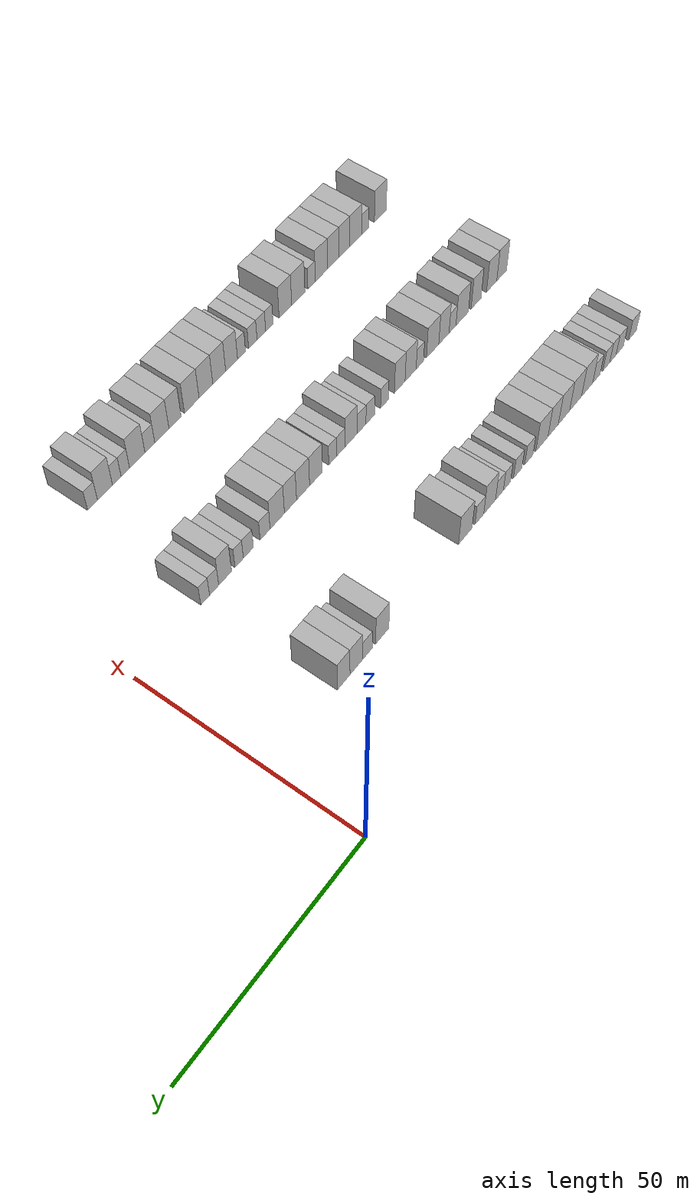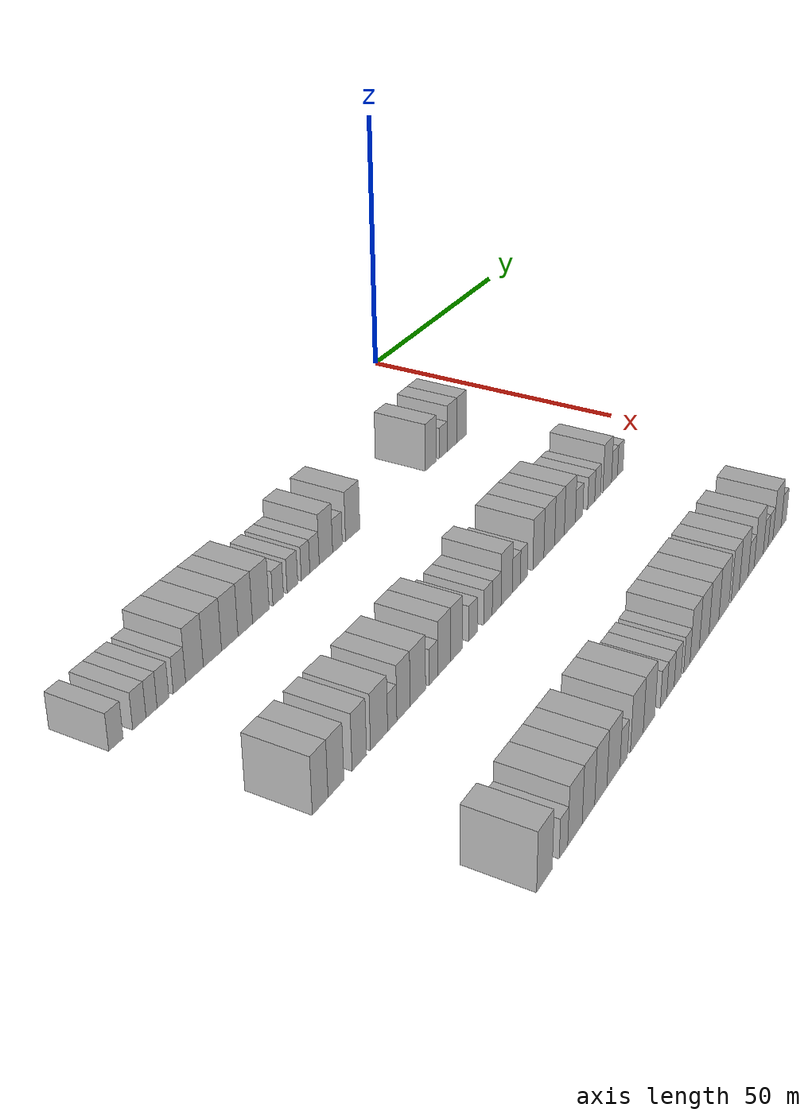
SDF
<sdf version="1.6">
 <world name="default">
  <model name="building_87">
   <static>1</static>
   <pose>25.0000 -118.3944 0 0.000000 0.000000 0.000000</pose>
   <link name="link">
    <pose>0 0 3.00 0 0 0</pose>
    <collision name="collision"><geometry><box><size>10.0000 2.9762 6.0000</size></box></geometry></collision>
    <visual name="visual">
     <cast_shadows>0</cast_shadows>
     <geometry><box><size>10.0000 2.9762 6.0000</size></box></geometry>
     <material>
      <script>
       <uri>model://HANNAS_wall/materials/scripts</uri>
       <uri>model://HANNAS_wall/materials/textures</uri>
       <name>vrc/HANNAS_wall</name>
      </script>
     </material>
    </visual>
   </link>
  </model>
  <model name="building_88">
   <static>1</static>
   <pose>25.0000 -113.4831 0 0.000000 0.000000 0.000000</pose>
   <link name="link">
    <pose>0 0 3.00 0 0 0</pose>
    <collision name="collision"><geometry><box><size>10.0000 2.8463 6.0000</size></box></geometry></collision>
    <visual name="visual">
     <cast_shadows>0</cast_shadows>
     <geometry><box><size>10.0000 2.8463 6.0000</size></box></geometry>
     <material>
      <script>
       <uri>model://HANNAS_wall/materials/scripts</uri>
       <uri>model://HANNAS_wall/materials/textures</uri>
       <name>vrc/HANNAS_wall</name>
      </script>
     </material>
    </visual>
   </link>
  </model>
  <model name="building_89">
   <static>1</static>
   <pose>25.0000 -110.8504 0 0.000000 0.000000 0.000000</pose>
   <link name="link">
    <pose>0 0 3.00 0 0 0</pose>
    <collision name="collision"><geometry><box><size>10.0000 2.4191 6.0000</size></box></geometry></collision>
    <visual name="visual">
     <cast_shadows>0</cast_shadows>
     <geometry><box><size>10.0000 2.4191 6.0000</size></box></geometry>
     <material>
      <script>
       <uri>model://HANNAS_wall/materials/scripts</uri>
       <uri>model://HANNAS_wall/materials/textures</uri>
       <name>vrc/HANNAS_wall</name>
      </script>
     </material>
    </visual>
   </link>
  </model>
  <model name="building_90">
   <static>1</static>
   <pose>25.0000 -108.3394 0 0.000000 0.000000 0.000000</pose>
   <link name="link">
    <pose>0 0 3.00 0 0 0</pose>
    <collision name="collision"><geometry><box><size>10.0000 2.6029 6.0000</size></box></geometry></collision>
    <visual name="visual">
     <cast_shadows>0</cast_shadows>
     <geometry><box><size>10.0000 2.6029 6.0000</size></box></geometry>
     <material>
      <script>
       <uri>model://HANNAS_wall/materials/scripts</uri>
       <uri>model://HANNAS_wall/materials/textures</uri>
       <name>vrc/HANNAS_wall</name>
      </script>
     </material>
    </visual>
   </link>
  </model>
  <model name="building_91">
   <static>1</static>
   <pose>25.0000 -104.6373 0 0.000000 0.000000 0.000000</pose>
   <link name="link">
    <pose>0 0 3.00 0 0 0</pose>
    <collision name="collision"><geometry><box><size>10.0000 2.8015 6.0000</size></box></geometry></collision>
    <visual name="visual">
     <cast_shadows>0</cast_shadows>
     <geometry><box><size>10.0000 2.8015 6.0000</size></box></geometry>
     <material>
      <script>
       <uri>model://HANNAS_wall/materials/scripts</uri>
       <uri>model://HANNAS_wall/materials/textures</uri>
       <name>vrc/HANNAS_wall</name>
      </script>
     </material>
    </visual>
   </link>
  </model>
  <model name="building_92">
   <static>1</static>
   <pose>25.0000 -101.1610 0 0.000000 0.000000 0.000000</pose>
   <link name="link">
    <pose>0 0 4.50 0 0 0</pose>
    <collision name="collision"><geometry><box><size>10.0000 4.1509 9.0000</size></box></geometry></collision>
    <visual name="visual">
     <cast_shadows>0</cast_shadows>
     <geometry><box><size>10.0000 4.1509 9.0000</size></box></geometry>
     <material>
      <script>
       <uri>model://HANNAS_wall/materials/scripts</uri>
       <uri>model://HANNAS_wall/materials/textures</uri>
       <name>vrc/HANNAS_wall</name>
      </script>
     </material>
    </visual>
   </link>
  </model>
  <model name="building_93">
   <static>1</static>
   <pose>25.0000 -96.8949 0 0.000000 0.000000 0.000000</pose>
   <link name="link">
    <pose>0 0 4.50 0 0 0</pose>
    <collision name="collision"><geometry><box><size>10.0000 4.3813 9.0000</size></box></geometry></collision>
    <visual name="visual">
     <cast_shadows>0</cast_shadows>
     <geometry><box><size>10.0000 4.3813 9.0000</size></box></geometry>
     <material>
      <script>
       <uri>model://HANNAS_wall/materials/scripts</uri>
       <uri>model://HANNAS_wall/materials/textures</uri>
       <name>vrc/HANNAS_wall</name>
      </script>
     </material>
    </visual>
   </link>
  </model>
  <model name="building_94">
   <static>1</static>
   <pose>25.0000 -92.6650 0 0.000000 0.000000 0.000000</pose>
   <link name="link">
    <pose>0 0 4.50 0 0 0</pose>
    <collision name="collision"><geometry><box><size>10.0000 4.0784 9.0000</size></box></geometry></collision>
    <visual name="visual">
     <cast_shadows>0</cast_shadows>
     <geometry><box><size>10.0000 4.0784 9.0000</size></box></geometry>
     <material>
      <script>
       <uri>model://HANNAS_wall/materials/scripts</uri>
       <uri>model://HANNAS_wall/materials/textures</uri>
       <name>vrc/HANNAS_wall</name>
      </script>
     </material>
    </visual>
   </link>
  </model>
  <model name="building_95">
   <static>1</static>
   <pose>25.0000 -88.7734 0 0.000000 0.000000 0.000000</pose>
   <link name="link">
    <pose>0 0 4.50 0 0 0</pose>
    <collision name="collision"><geometry><box><size>10.0000 3.7049 9.0000</size></box></geometry></collision>
    <visual name="visual">
     <cast_shadows>0</cast_shadows>
     <geometry><box><size>10.0000 3.7049 9.0000</size></box></geometry>
     <material>
      <script>
       <uri>model://HANNAS_wall/materials/scripts</uri>
       <uri>model://HANNAS_wall/materials/textures</uri>
       <name>vrc/HANNAS_wall</name>
      </script>
     </material>
    </visual>
   </link>
  </model>
  <model name="building_96">
   <static>1</static>
   <pose>25.0000 -84.7513 0 0.000000 0.000000 0.000000</pose>
   <link name="link">
    <pose>0 0 4.50 0 0 0</pose>
    <collision name="collision"><geometry><box><size>10.0000 4.3392 9.0000</size></box></geometry></collision>
    <visual name="visual">
     <cast_shadows>0</cast_shadows>
     <geometry><box><size>10.0000 4.3392 9.0000</size></box></geometry>
     <material>
      <script>
       <uri>model://HANNAS_wall/materials/scripts</uri>
       <uri>model://HANNAS_wall/materials/textures</uri>
       <name>vrc/HANNAS_wall</name>
      </script>
     </material>
    </visual>
   </link>
  </model>
  <model name="building_97">
   <static>1</static>
   <pose>25.0000 -80.1535 0 0.000000 0.000000 0.000000</pose>
   <link name="link">
    <pose>0 0 3.00 0 0 0</pose>
    <collision name="collision"><geometry><box><size>10.0000 2.8565 6.0000</size></box></geometry></collision>
    <visual name="visual">
     <cast_shadows>0</cast_shadows>
     <geometry><box><size>10.0000 2.8565 6.0000</size></box></geometry>
     <material>
      <script>
       <uri>model://HANNAS_wall/materials/scripts</uri>
       <uri>model://HANNAS_wall/materials/textures</uri>
       <name>vrc/HANNAS_wall</name>
      </script>
     </material>
    </visual>
   </link>
  </model>
  <model name="building_98">
   <static>1</static>
   <pose>25.0000 -76.2594 0 0.000000 0.000000 0.000000</pose>
   <link name="link">
    <pose>0 0 3.00 0 0 0</pose>
    <collision name="collision"><geometry><box><size>10.0000 2.9316 6.0000</size></box></geometry></collision>
    <visual name="visual">
     <cast_shadows>0</cast_shadows>
     <geometry><box><size>10.0000 2.9316 6.0000</size></box></geometry>
     <material>
      <script>
       <uri>model://HANNAS_wall/materials/scripts</uri>
       <uri>model://HANNAS_wall/materials/textures</uri>
       <name>vrc/HANNAS_wall</name>
      </script>
     </material>
    </visual>
   </link>
  </model>
  <model name="building_99">
   <static>1</static>
   <pose>25.0000 -72.5748 0 0.000000 0.000000 0.000000</pose>
   <link name="link">
    <pose>0 0 3.00 0 0 0</pose>
    <collision name="collision"><geometry><box><size>10.0000 2.4377 6.0000</size></box></geometry></collision>
    <visual name="visual">
     <cast_shadows>0</cast_shadows>
     <geometry><box><size>10.0000 2.4377 6.0000</size></box></geometry>
     <material>
      <script>
       <uri>model://HANNAS_wall/materials/scripts</uri>
       <uri>model://HANNAS_wall/materials/textures</uri>
       <name>vrc/HANNAS_wall</name>
      </script>
     </material>
    </visual>
   </link>
  </model>
  <model name="building_100">
   <static>1</static>
   <pose>25.0000 -70.0135 0 0.000000 0.000000 0.000000</pose>
   <link name="link">
    <pose>0 0 3.00 0 0 0</pose>
    <collision name="collision"><geometry><box><size>10.0000 2.6848 6.0000</size></box></geometry></collision>
    <visual name="visual">
     <cast_shadows>0</cast_shadows>
     <geometry><box><size>10.0000 2.6848 6.0000</size></box></geometry>
     <material>
      <script>
       <uri>model://HANNAS_wall/materials/scripts</uri>
       <uri>model://HANNAS_wall/materials/textures</uri>
       <name>vrc/HANNAS_wall</name>
      </script>
     </material>
    </visual>
   </link>
  </model>
  <model name="building_101">
   <static>1</static>
   <pose>25.0000 -66.6913 0 0.000000 0.000000 0.000000</pose>
   <link name="link">
    <pose>0 0 4.50 0 0 0</pose>
    <collision name="collision"><geometry><box><size>10.0000 3.9597 9.0000</size></box></geometry></collision>
    <visual name="visual">
     <cast_shadows>0</cast_shadows>
     <geometry><box><size>10.0000 3.9597 9.0000</size></box></geometry>
     <material>
      <script>
       <uri>model://HANNAS_wall/materials/scripts</uri>
       <uri>model://HANNAS_wall/materials/textures</uri>
       <name>vrc/HANNAS_wall</name>
      </script>
     </material>
    </visual>
   </link>
  </model>
  <model name="building_102">
   <static>1</static>
   <pose>25.0000 -63.2658 0 0.000000 0.000000 0.000000</pose>
   <link name="link">
    <pose>0 0 3.00 0 0 0</pose>
    <collision name="collision"><geometry><box><size>10.0000 2.8912 6.0000</size></box></geometry></collision>
    <visual name="visual">
     <cast_shadows>0</cast_shadows>
     <geometry><box><size>10.0000 2.8912 6.0000</size></box></geometry>
     <material>
      <script>
       <uri>model://HANNAS_wall/materials/scripts</uri>
       <uri>model://HANNAS_wall/materials/textures</uri>
       <name>vrc/HANNAS_wall</name>
      </script>
     </material>
    </visual>
   </link>
  </model>
  <model name="building_103">
   <static>1</static>
   <pose>25.0000 -58.6016 0 0.000000 0.000000 0.000000</pose>
   <link name="link">
    <pose>0 0 4.50 0 0 0</pose>
    <collision name="collision"><geometry><box><size>10.0000 4.4373 9.0000</size></box></geometry></collision>
    <visual name="visual">
     <cast_shadows>0</cast_shadows>
     <geometry><box><size>10.0000 4.4373 9.0000</size></box></geometry>
     <material>
      <script>
       <uri>model://HANNAS_wall/materials/scripts</uri>
       <uri>model://HANNAS_wall/materials/textures</uri>
       <name>vrc/HANNAS_wall</name>
      </script>
     </material>
    </visual>
   </link>
  </model>
  <model name="building_104">
   <static>1</static>
   <pose>25.0000 -32.3615 0 0.000000 0.000000 0.000000</pose>
   <link name="link">
    <pose>0 0 4.50 0 0 0</pose>
    <collision name="collision"><geometry><box><size>10.0000 4.0143 9.0000</size></box></geometry></collision>
    <visual name="visual">
     <cast_shadows>0</cast_shadows>
     <geometry><box><size>10.0000 4.0143 9.0000</size></box></geometry>
     <material>
      <script>
       <uri>model://HANNAS_wall/materials/scripts</uri>
       <uri>model://HANNAS_wall/materials/textures</uri>
       <name>vrc/HANNAS_wall</name>
      </script>
     </material>
    </visual>
   </link>
  </model>
  <model name="building_105">
   <static>1</static>
   <pose>25.0000 -27.8669 0 0.000000 0.000000 0.000000</pose>
   <link name="link">
    <pose>0 0 3.00 0 0 0</pose>
    <collision name="collision"><geometry><box><size>10.0000 2.9749 6.0000</size></box></geometry></collision>
    <visual name="visual">
     <cast_shadows>0</cast_shadows>
     <geometry><box><size>10.0000 2.9749 6.0000</size></box></geometry>
     <material>
      <script>
       <uri>model://HANNAS_wall/materials/scripts</uri>
       <uri>model://HANNAS_wall/materials/textures</uri>
       <name>vrc/HANNAS_wall</name>
      </script>
     </material>
    </visual>
   </link>
  </model>
  <model name="building_106">
   <static>1</static>
   <pose>25.0000 -24.5528 0 0.000000 0.000000 0.000000</pose>
   <link name="link">
    <pose>0 0 4.50 0 0 0</pose>
    <collision name="collision"><geometry><box><size>10.0000 3.6533 9.0000</size></box></geometry></collision>
    <visual name="visual">
     <cast_shadows>0</cast_shadows>
     <geometry><box><size>10.0000 3.6533 9.0000</size></box></geometry>
     <material>
      <script>
       <uri>model://HANNAS_wall/materials/scripts</uri>
       <uri>model://HANNAS_wall/materials/textures</uri>
       <name>vrc/HANNAS_wall</name>
      </script>
     </material>
    </visual>
   </link>
  </model>
  <model name="building_107">
   <static>1</static>
   <pose>25.0000 -20.8812 0 0.000000 0.000000 0.000000</pose>
   <link name="link">
    <pose>0 0 4.50 0 0 0</pose>
    <collision name="collision"><geometry><box><size>10.0000 3.6899 9.0000</size></box></geometry></collision>
    <visual name="visual">
     <cast_shadows>0</cast_shadows>
     <geometry><box><size>10.0000 3.6899 9.0000</size></box></geometry>
     <material>
      <script>
       <uri>model://HANNAS_wall/materials/scripts</uri>
       <uri>model://HANNAS_wall/materials/textures</uri>
       <name>vrc/HANNAS_wall</name>
      </script>
     </material>
    </visual>
   </link>
  </model>
  <model name="building_311">
   <static>1</static>
   <pose>55.0000 -116.2164 0 0.000000 0.000000 0.000000</pose>
   <link name="link">
    <pose>0 0 4.50 0 0 0</pose>
    <collision name="collision"><geometry><box><size>10.0000 3.6587 9.0000</size></box></geometry></collision>
    <visual name="visual">
     <cast_shadows>0</cast_shadows>
     <geometry><box><size>10.0000 3.6587 9.0000</size></box></geometry>
     <material>
      <script>
       <uri>model://HANNAS_wall/materials/scripts</uri>
       <uri>model://HANNAS_wall/materials/textures</uri>
       <name>vrc/HANNAS_wall</name>
      </script>
     </material>
    </visual>
   </link>
  </model>
  <model name="building_312">
   <static>1</static>
   <pose>55.0000 -112.4895 0 0.000000 0.000000 0.000000</pose>
   <link name="link">
    <pose>0 0 4.50 0 0 0</pose>
    <collision name="collision"><geometry><box><size>10.0000 3.7952 9.0000</size></box></geometry></collision>
    <visual name="visual">
     <cast_shadows>0</cast_shadows>
     <geometry><box><size>10.0000 3.7952 9.0000</size></box></geometry>
     <material>
      <script>
       <uri>model://HANNAS_wall/materials/scripts</uri>
       <uri>model://HANNAS_wall/materials/textures</uri>
       <name>vrc/HANNAS_wall</name>
      </script>
     </material>
    </visual>
   </link>
  </model>
  <model name="building_313">
   <static>1</static>
   <pose>55.0000 -106.7815 0 0.000000 0.000000 0.000000</pose>
   <link name="link">
    <pose>0 0 4.50 0 0 0</pose>
    <collision name="collision"><geometry><box><size>10.0000 3.6206 9.0000</size></box></geometry></collision>
    <visual name="visual">
     <cast_shadows>0</cast_shadows>
     <geometry><box><size>10.0000 3.6206 9.0000</size></box></geometry>
     <material>
      <script>
       <uri>model://HANNAS_wall/materials/scripts</uri>
       <uri>model://HANNAS_wall/materials/textures</uri>
       <name>vrc/HANNAS_wall</name>
      </script>
     </material>
    </visual>
   </link>
  </model>
  <model name="building_314">
   <static>1</static>
   <pose>55.0000 -101.7455 0 0.000000 0.000000 0.000000</pose>
   <link name="link">
    <pose>0 0 4.50 0 0 0</pose>
    <collision name="collision"><geometry><box><size>10.0000 4.4515 9.0000</size></box></geometry></collision>
    <visual name="visual">
     <cast_shadows>0</cast_shadows>
     <geometry><box><size>10.0000 4.4515 9.0000</size></box></geometry>
     <material>
      <script>
       <uri>model://HANNAS_wall/materials/scripts</uri>
       <uri>model://HANNAS_wall/materials/textures</uri>
       <name>vrc/HANNAS_wall</name>
      </script>
     </material>
    </visual>
   </link>
  </model>
  <model name="building_315">
   <static>1</static>
   <pose>55.0000 -98.2851 0 0.000000 0.000000 0.000000</pose>
   <link name="link">
    <pose>0 0 3.00 0 0 0</pose>
    <collision name="collision"><geometry><box><size>10.0000 2.4693 6.0000</size></box></geometry></collision>
    <visual name="visual">
     <cast_shadows>0</cast_shadows>
     <geometry><box><size>10.0000 2.4693 6.0000</size></box></geometry>
     <material>
      <script>
       <uri>model://HANNAS_wall/materials/scripts</uri>
       <uri>model://HANNAS_wall/materials/textures</uri>
       <name>vrc/HANNAS_wall</name>
      </script>
     </material>
    </visual>
   </link>
  </model>
  <model name="building_316">
   <static>1</static>
   <pose>55.0000 -95.2318 0 0.000000 0.000000 0.000000</pose>
   <link name="link">
    <pose>0 0 4.50 0 0 0</pose>
    <collision name="collision"><geometry><box><size>10.0000 3.6374 9.0000</size></box></geometry></collision>
    <visual name="visual">
     <cast_shadows>0</cast_shadows>
     <geometry><box><size>10.0000 3.6374 9.0000</size></box></geometry>
     <material>
      <script>
       <uri>model://HANNAS_wall/materials/scripts</uri>
       <uri>model://HANNAS_wall/materials/textures</uri>
       <name>vrc/HANNAS_wall</name>
      </script>
     </material>
    </visual>
   </link>
  </model>
  <model name="building_317">
   <static>1</static>
   <pose>55.0000 -91.2551 0 0.000000 0.000000 0.000000</pose>
   <link name="link">
    <pose>0 0 4.50 0 0 0</pose>
    <collision name="collision"><geometry><box><size>10.0000 4.3159 9.0000</size></box></geometry></collision>
    <visual name="visual">
     <cast_shadows>0</cast_shadows>
     <geometry><box><size>10.0000 4.3159 9.0000</size></box></geometry>
     <material>
      <script>
       <uri>model://HANNAS_wall/materials/scripts</uri>
       <uri>model://HANNAS_wall/materials/textures</uri>
       <name>vrc/HANNAS_wall</name>
      </script>
     </material>
    </visual>
   </link>
  </model>
  <model name="building_318">
   <static>1</static>
   <pose>55.0000 -86.8204 0 0.000000 0.000000 0.000000</pose>
   <link name="link">
    <pose>0 0 3.00 0 0 0</pose>
    <collision name="collision"><geometry><box><size>10.0000 2.5535 6.0000</size></box></geometry></collision>
    <visual name="visual">
     <cast_shadows>0</cast_shadows>
     <geometry><box><size>10.0000 2.5535 6.0000</size></box></geometry>
     <material>
      <script>
       <uri>model://HANNAS_wall/materials/scripts</uri>
       <uri>model://HANNAS_wall/materials/textures</uri>
       <name>vrc/HANNAS_wall</name>
      </script>
     </material>
    </visual>
   </link>
  </model>
  <model name="building_319">
   <static>1</static>
   <pose>55.0000 -83.6455 0 0.000000 0.000000 0.000000</pose>
   <link name="link">
    <pose>0 0 4.50 0 0 0</pose>
    <collision name="collision"><geometry><box><size>10.0000 3.7963 9.0000</size></box></geometry></collision>
    <visual name="visual">
     <cast_shadows>0</cast_shadows>
     <geometry><box><size>10.0000 3.7963 9.0000</size></box></geometry>
     <material>
      <script>
       <uri>model://HANNAS_wall/materials/scripts</uri>
       <uri>model://HANNAS_wall/materials/textures</uri>
       <name>vrc/HANNAS_wall</name>
      </script>
     </material>
    </visual>
   </link>
  </model>
  <model name="building_320">
   <static>1</static>
   <pose>55.0000 -79.9464 0 0.000000 0.000000 0.000000</pose>
   <link name="link">
    <pose>0 0 4.50 0 0 0</pose>
    <collision name="collision"><geometry><box><size>10.0000 3.6018 9.0000</size></box></geometry></collision>
    <visual name="visual">
     <cast_shadows>0</cast_shadows>
     <geometry><box><size>10.0000 3.6018 9.0000</size></box></geometry>
     <material>
      <script>
       <uri>model://HANNAS_wall/materials/scripts</uri>
       <uri>model://HANNAS_wall/materials/textures</uri>
       <name>vrc/HANNAS_wall</name>
      </script>
     </material>
    </visual>
   </link>
  </model>
  <model name="building_321">
   <static>1</static>
   <pose>55.0000 -74.8217 0 0.000000 0.000000 0.000000</pose>
   <link name="link">
    <pose>0 0 3.00 0 0 0</pose>
    <collision name="collision"><geometry><box><size>10.0000 2.6476 6.0000</size></box></geometry></collision>
    <visual name="visual">
     <cast_shadows>0</cast_shadows>
     <geometry><box><size>10.0000 2.6476 6.0000</size></box></geometry>
     <material>
      <script>
       <uri>model://HANNAS_wall/materials/scripts</uri>
       <uri>model://HANNAS_wall/materials/textures</uri>
       <name>vrc/HANNAS_wall</name>
      </script>
     </material>
    </visual>
   </link>
  </model>
  <model name="building_322">
   <static>1</static>
   <pose>55.0000 -70.0870 0 0.000000 0.000000 0.000000</pose>
   <link name="link">
    <pose>0 0 3.00 0 0 0</pose>
    <collision name="collision"><geometry><box><size>10.0000 2.8219 6.0000</size></box></geometry></collision>
    <visual name="visual">
     <cast_shadows>0</cast_shadows>
     <geometry><box><size>10.0000 2.8219 6.0000</size></box></geometry>
     <material>
      <script>
       <uri>model://HANNAS_wall/materials/scripts</uri>
       <uri>model://HANNAS_wall/materials/textures</uri>
       <name>vrc/HANNAS_wall</name>
      </script>
     </material>
    </visual>
   </link>
  </model>
  <model name="building_323">
   <static>1</static>
   <pose>55.0000 -67.2088 0 0.000000 0.000000 0.000000</pose>
   <link name="link">
    <pose>0 0 3.00 0 0 0</pose>
    <collision name="collision"><geometry><box><size>10.0000 2.9345 6.0000</size></box></geometry></collision>
    <visual name="visual">
     <cast_shadows>0</cast_shadows>
     <geometry><box><size>10.0000 2.9345 6.0000</size></box></geometry>
     <material>
      <script>
       <uri>model://HANNAS_wall/materials/scripts</uri>
       <uri>model://HANNAS_wall/materials/textures</uri>
       <name>vrc/HANNAS_wall</name>
      </script>
     </material>
    </visual>
   </link>
  </model>
  <model name="building_324">
   <static>1</static>
   <pose>55.0000 -63.8130 0 0.000000 0.000000 0.000000</pose>
   <link name="link">
    <pose>0 0 4.50 0 0 0</pose>
    <collision name="collision"><geometry><box><size>10.0000 3.8571 9.0000</size></box></geometry></collision>
    <visual name="visual">
     <cast_shadows>0</cast_shadows>
     <geometry><box><size>10.0000 3.8571 9.0000</size></box></geometry>
     <material>
      <script>
       <uri>model://HANNAS_wall/materials/scripts</uri>
       <uri>model://HANNAS_wall/materials/textures</uri>
       <name>vrc/HANNAS_wall</name>
      </script>
     </material>
    </visual>
   </link>
  </model>
  <model name="building_325">
   <static>1</static>
   <pose>55.0000 -60.5026 0 0.000000 0.000000 0.000000</pose>
   <link name="link">
    <pose>0 0 3.00 0 0 0</pose>
    <collision name="collision"><geometry><box><size>10.0000 2.7637 6.0000</size></box></geometry></collision>
    <visual name="visual">
     <cast_shadows>0</cast_shadows>
     <geometry><box><size>10.0000 2.7637 6.0000</size></box></geometry>
     <material>
      <script>
       <uri>model://HANNAS_wall/materials/scripts</uri>
       <uri>model://HANNAS_wall/materials/textures</uri>
       <name>vrc/HANNAS_wall</name>
      </script>
     </material>
    </visual>
   </link>
  </model>
  <model name="building_326">
   <static>1</static>
   <pose>55.0000 -57.8874 0 0.000000 0.000000 0.000000</pose>
   <link name="link">
    <pose>0 0 3.00 0 0 0</pose>
    <collision name="collision"><geometry><box><size>10.0000 2.4667 6.0000</size></box></geometry></collision>
    <visual name="visual">
     <cast_shadows>0</cast_shadows>
     <geometry><box><size>10.0000 2.4667 6.0000</size></box></geometry>
     <material>
      <script>
       <uri>model://HANNAS_wall/materials/scripts</uri>
       <uri>model://HANNAS_wall/materials/textures</uri>
       <name>vrc/HANNAS_wall</name>
      </script>
     </material>
    </visual>
   </link>
  </model>
  <model name="building_327">
   <static>1</static>
   <pose>55.0000 -52.6519 0 0.000000 0.000000 0.000000</pose>
   <link name="link">
    <pose>0 0 4.50 0 0 0</pose>
    <collision name="collision"><geometry><box><size>10.0000 4.0042 9.0000</size></box></geometry></collision>
    <visual name="visual">
     <cast_shadows>0</cast_shadows>
     <geometry><box><size>10.0000 4.0042 9.0000</size></box></geometry>
     <material>
      <script>
       <uri>model://HANNAS_wall/materials/scripts</uri>
       <uri>model://HANNAS_wall/materials/textures</uri>
       <name>vrc/HANNAS_wall</name>
      </script>
     </material>
    </visual>
   </link>
  </model>
  <model name="building_328">
   <static>1</static>
   <pose>55.0000 -48.6247 0 0.000000 0.000000 0.000000</pose>
   <link name="link">
    <pose>0 0 4.50 0 0 0</pose>
    <collision name="collision"><geometry><box><size>10.0000 4.0501 9.0000</size></box></geometry></collision>
    <visual name="visual">
     <cast_shadows>0</cast_shadows>
     <geometry><box><size>10.0000 4.0501 9.0000</size></box></geometry>
     <material>
      <script>
       <uri>model://HANNAS_wall/materials/scripts</uri>
       <uri>model://HANNAS_wall/materials/textures</uri>
       <name>vrc/HANNAS_wall</name>
      </script>
     </material>
    </visual>
   </link>
  </model>
  <model name="building_329">
   <static>1</static>
   <pose>55.0000 -44.7413 0 0.000000 0.000000 0.000000</pose>
   <link name="link">
    <pose>0 0 4.50 0 0 0</pose>
    <collision name="collision"><geometry><box><size>10.0000 3.7168 9.0000</size></box></geometry></collision>
    <visual name="visual">
     <cast_shadows>0</cast_shadows>
     <geometry><box><size>10.0000 3.7168 9.0000</size></box></geometry>
     <material>
      <script>
       <uri>model://HANNAS_wall/materials/scripts</uri>
       <uri>model://HANNAS_wall/materials/textures</uri>
       <name>vrc/HANNAS_wall</name>
      </script>
     </material>
    </visual>
   </link>
  </model>
  <model name="building_330">
   <static>1</static>
   <pose>55.0000 -40.7063 0 0.000000 0.000000 0.000000</pose>
   <link name="link">
    <pose>0 0 4.50 0 0 0</pose>
    <collision name="collision"><geometry><box><size>10.0000 4.3532 9.0000</size></box></geometry></collision>
    <visual name="visual">
     <cast_shadows>0</cast_shadows>
     <geometry><box><size>10.0000 4.3532 9.0000</size></box></geometry>
     <material>
      <script>
       <uri>model://HANNAS_wall/materials/scripts</uri>
       <uri>model://HANNAS_wall/materials/textures</uri>
       <name>vrc/HANNAS_wall</name>
      </script>
     </material>
    </visual>
   </link>
  </model>
  <model name="building_331">
   <static>1</static>
   <pose>55.0000 -37.0345 0 0.000000 0.000000 0.000000</pose>
   <link name="link">
    <pose>0 0 3.00 0 0 0</pose>
    <collision name="collision"><geometry><box><size>10.0000 2.9905 6.0000</size></box></geometry></collision>
    <visual name="visual">
     <cast_shadows>0</cast_shadows>
     <geometry><box><size>10.0000 2.9905 6.0000</size></box></geometry>
     <material>
      <script>
       <uri>model://HANNAS_wall/materials/scripts</uri>
       <uri>model://HANNAS_wall/materials/textures</uri>
       <name>vrc/HANNAS_wall</name>
      </script>
     </material>
    </visual>
   </link>
  </model>
  <model name="building_332">
   <static>1</static>
   <pose>55.0000 -32.0658 0 0.000000 0.000000 0.000000</pose>
   <link name="link">
    <pose>0 0 3.00 0 0 0</pose>
    <collision name="collision"><geometry><box><size>10.0000 2.9469 6.0000</size></box></geometry></collision>
    <visual name="visual">
     <cast_shadows>0</cast_shadows>
     <geometry><box><size>10.0000 2.9469 6.0000</size></box></geometry>
     <material>
      <script>
       <uri>model://HANNAS_wall/materials/scripts</uri>
       <uri>model://HANNAS_wall/materials/textures</uri>
       <name>vrc/HANNAS_wall</name>
      </script>
     </material>
    </visual>
   </link>
  </model>
  <model name="building_333">
   <static>1</static>
   <pose>55.0000 -29.3618 0 0.000000 0.000000 0.000000</pose>
   <link name="link">
    <pose>0 0 3.00 0 0 0</pose>
    <collision name="collision"><geometry><box><size>10.0000 2.4611 6.0000</size></box></geometry></collision>
    <visual name="visual">
     <cast_shadows>0</cast_shadows>
     <geometry><box><size>10.0000 2.4611 6.0000</size></box></geometry>
     <material>
      <script>
       <uri>model://HANNAS_wall/materials/scripts</uri>
       <uri>model://HANNAS_wall/materials/textures</uri>
       <name>vrc/HANNAS_wall</name>
      </script>
     </material>
    </visual>
   </link>
  </model>
  <model name="building_334">
   <static>1</static>
   <pose>55.0000 -25.2741 0 0.000000 0.000000 0.000000</pose>
   <link name="link">
    <pose>0 0 4.50 0 0 0</pose>
    <collision name="collision"><geometry><box><size>10.0000 3.7142 9.0000</size></box></geometry></collision>
    <visual name="visual">
     <cast_shadows>0</cast_shadows>
     <geometry><box><size>10.0000 3.7142 9.0000</size></box></geometry>
     <material>
      <script>
       <uri>model://HANNAS_wall/materials/scripts</uri>
       <uri>model://HANNAS_wall/materials/textures</uri>
       <name>vrc/HANNAS_wall</name>
      </script>
     </material>
    </visual>
   </link>
  </model>
  <model name="building_335">
   <static>1</static>
   <pose>55.0000 -22.1037 0 0.000000 0.000000 0.000000</pose>
   <link name="link">
    <pose>0 0 3.00 0 0 0</pose>
    <collision name="collision"><geometry><box><size>10.0000 2.6265 6.0000</size></box></geometry></collision>
    <visual name="visual">
     <cast_shadows>0</cast_shadows>
     <geometry><box><size>10.0000 2.6265 6.0000</size></box></geometry>
     <material>
      <script>
       <uri>model://HANNAS_wall/materials/scripts</uri>
       <uri>model://HANNAS_wall/materials/textures</uri>
       <name>vrc/HANNAS_wall</name>
      </script>
     </material>
    </visual>
   </link>
  </model>
  <model name="building_336">
   <static>1</static>
   <pose>55.0000 -19.5377 0 0.000000 0.000000 0.000000</pose>
   <link name="link">
    <pose>0 0 3.00 0 0 0</pose>
    <collision name="collision"><geometry><box><size>10.0000 2.5055 6.0000</size></box></geometry></collision>
    <visual name="visual">
     <cast_shadows>0</cast_shadows>
     <geometry><box><size>10.0000 2.5055 6.0000</size></box></geometry>
     <material>
      <script>
       <uri>model://HANNAS_wall/materials/scripts</uri>
       <uri>model://HANNAS_wall/materials/textures</uri>
       <name>vrc/HANNAS_wall</name>
      </script>
     </material>
    </visual>
   </link>
  </model>
  <model name="building_547">
   <static>1</static>
   <pose>85.0000 -115.0633 0 0.000000 0.000000 0.000000</pose>
   <link name="link">
    <pose>0 0 4.50 0 0 0</pose>
    <collision name="collision"><geometry><box><size>10.0000 4.3106 9.0000</size></box></geometry></collision>
    <visual name="visual">
     <cast_shadows>0</cast_shadows>
     <geometry><box><size>10.0000 4.3106 9.0000</size></box></geometry>
     <material>
      <script>
       <uri>model://HANNAS_wall/materials/scripts</uri>
       <uri>model://HANNAS_wall/materials/textures</uri>
       <name>vrc/HANNAS_wall</name>
      </script>
     </material>
    </visual>
   </link>
  </model>
  <model name="building_548">
   <static>1</static>
   <pose>85.0000 -109.6851 0 0.000000 0.000000 0.000000</pose>
   <link name="link">
    <pose>0 0 3.00 0 0 0</pose>
    <collision name="collision"><geometry><box><size>10.0000 2.4458 6.0000</size></box></geometry></collision>
    <visual name="visual">
     <cast_shadows>0</cast_shadows>
     <geometry><box><size>10.0000 2.4458 6.0000</size></box></geometry>
     <material>
      <script>
       <uri>model://HANNAS_wall/materials/scripts</uri>
       <uri>model://HANNAS_wall/materials/textures</uri>
       <name>vrc/HANNAS_wall</name>
      </script>
     </material>
    </visual>
   </link>
  </model>
  <model name="building_549">
   <static>1</static>
   <pose>85.0000 -106.3121 0 0.000000 0.000000 0.000000</pose>
   <link name="link">
    <pose>0 0 4.50 0 0 0</pose>
    <collision name="collision"><geometry><box><size>10.0000 4.3004 9.0000</size></box></geometry></collision>
    <visual name="visual">
     <cast_shadows>0</cast_shadows>
     <geometry><box><size>10.0000 4.3004 9.0000</size></box></geometry>
     <material>
      <script>
       <uri>model://HANNAS_wall/materials/scripts</uri>
       <uri>model://HANNAS_wall/materials/textures</uri>
       <name>vrc/HANNAS_wall</name>
      </script>
     </material>
    </visual>
   </link>
  </model>
  <model name="building_550">
   <static>1</static>
   <pose>85.0000 -102.2429 0 0.000000 0.000000 0.000000</pose>
   <link name="link">
    <pose>0 0 4.50 0 0 0</pose>
    <collision name="collision"><geometry><box><size>10.0000 3.8379 9.0000</size></box></geometry></collision>
    <visual name="visual">
     <cast_shadows>0</cast_shadows>
     <geometry><box><size>10.0000 3.8379 9.0000</size></box></geometry>
     <material>
      <script>
       <uri>model://HANNAS_wall/materials/scripts</uri>
       <uri>model://HANNAS_wall/materials/textures</uri>
       <name>vrc/HANNAS_wall</name>
      </script>
     </material>
    </visual>
   </link>
  </model>
  <model name="building_551">
   <static>1</static>
   <pose>85.0000 -98.3882 0 0.000000 0.000000 0.000000</pose>
   <link name="link">
    <pose>0 0 4.50 0 0 0</pose>
    <collision name="collision"><geometry><box><size>10.0000 3.8715 9.0000</size></box></geometry></collision>
    <visual name="visual">
     <cast_shadows>0</cast_shadows>
     <geometry><box><size>10.0000 3.8715 9.0000</size></box></geometry>
     <material>
      <script>
       <uri>model://HANNAS_wall/materials/scripts</uri>
       <uri>model://HANNAS_wall/materials/textures</uri>
       <name>vrc/HANNAS_wall</name>
      </script>
     </material>
    </visual>
   </link>
  </model>
  <model name="building_552">
   <static>1</static>
   <pose>85.0000 -94.3184 0 0.000000 0.000000 0.000000</pose>
   <link name="link">
    <pose>0 0 4.50 0 0 0</pose>
    <collision name="collision"><geometry><box><size>10.0000 4.2681 9.0000</size></box></geometry></collision>
    <visual name="visual">
     <cast_shadows>0</cast_shadows>
     <geometry><box><size>10.0000 4.2681 9.0000</size></box></geometry>
     <material>
      <script>
       <uri>model://HANNAS_wall/materials/scripts</uri>
       <uri>model://HANNAS_wall/materials/textures</uri>
       <name>vrc/HANNAS_wall</name>
      </script>
     </material>
    </visual>
   </link>
  </model>
  <model name="building_553">
   <static>1</static>
   <pose>85.0000 -90.9220 0 0.000000 0.000000 0.000000</pose>
   <link name="link">
    <pose>0 0 3.00 0 0 0</pose>
    <collision name="collision"><geometry><box><size>10.0000 2.5247 6.0000</size></box></geometry></collision>
    <visual name="visual">
     <cast_shadows>0</cast_shadows>
     <geometry><box><size>10.0000 2.5247 6.0000</size></box></geometry>
     <material>
      <script>
       <uri>model://HANNAS_wall/materials/scripts</uri>
       <uri>model://HANNAS_wall/materials/textures</uri>
       <name>vrc/HANNAS_wall</name>
      </script>
     </material>
    </visual>
   </link>
  </model>
  <model name="building_554">
   <static>1</static>
   <pose>85.0000 -86.4355 0 0.000000 0.000000 0.000000</pose>
   <link name="link">
    <pose>0 0 4.50 0 0 0</pose>
    <collision name="collision"><geometry><box><size>10.0000 4.4484 9.0000</size></box></geometry></collision>
    <visual name="visual">
     <cast_shadows>0</cast_shadows>
     <geometry><box><size>10.0000 4.4484 9.0000</size></box></geometry>
     <material>
      <script>
       <uri>model://HANNAS_wall/materials/scripts</uri>
       <uri>model://HANNAS_wall/materials/textures</uri>
       <name>vrc/HANNAS_wall</name>
      </script>
     </material>
    </visual>
   </link>
  </model>
  <model name="building_555">
   <static>1</static>
   <pose>85.0000 -82.1192 0 0.000000 0.000000 0.000000</pose>
   <link name="link">
    <pose>0 0 4.50 0 0 0</pose>
    <collision name="collision"><geometry><box><size>10.0000 4.1841 9.0000</size></box></geometry></collision>
    <visual name="visual">
     <cast_shadows>0</cast_shadows>
     <geometry><box><size>10.0000 4.1841 9.0000</size></box></geometry>
     <material>
      <script>
       <uri>model://HANNAS_wall/materials/scripts</uri>
       <uri>model://HANNAS_wall/materials/textures</uri>
       <name>vrc/HANNAS_wall</name>
      </script>
     </material>
    </visual>
   </link>
  </model>
  <model name="building_556">
   <static>1</static>
   <pose>85.0000 -76.8180 0 0.000000 0.000000 0.000000</pose>
   <link name="link">
    <pose>0 0 3.00 0 0 0</pose>
    <collision name="collision"><geometry><box><size>10.0000 2.4183 6.0000</size></box></geometry></collision>
    <visual name="visual">
     <cast_shadows>0</cast_shadows>
     <geometry><box><size>10.0000 2.4183 6.0000</size></box></geometry>
     <material>
      <script>
       <uri>model://HANNAS_wall/materials/scripts</uri>
       <uri>model://HANNAS_wall/materials/textures</uri>
       <name>vrc/HANNAS_wall</name>
      </script>
     </material>
    </visual>
   </link>
  </model>
  <model name="building_557">
   <static>1</static>
   <pose>85.0000 -74.2062 0 0.000000 0.000000 0.000000</pose>
   <link name="link">
    <pose>0 0 3.00 0 0 0</pose>
    <collision name="collision"><geometry><box><size>10.0000 2.8054 6.0000</size></box></geometry></collision>
    <visual name="visual">
     <cast_shadows>0</cast_shadows>
     <geometry><box><size>10.0000 2.8054 6.0000</size></box></geometry>
     <material>
      <script>
       <uri>model://HANNAS_wall/materials/scripts</uri>
       <uri>model://HANNAS_wall/materials/textures</uri>
       <name>vrc/HANNAS_wall</name>
      </script>
     </material>
    </visual>
   </link>
  </model>
  <model name="building_558">
   <static>1</static>
   <pose>85.0000 -71.4496 0 0.000000 0.000000 0.000000</pose>
   <link name="link">
    <pose>0 0 3.00 0 0 0</pose>
    <collision name="collision"><geometry><box><size>10.0000 2.7078 6.0000</size></box></geometry></collision>
    <visual name="visual">
     <cast_shadows>0</cast_shadows>
     <geometry><box><size>10.0000 2.7078 6.0000</size></box></geometry>
     <material>
      <script>
       <uri>model://HANNAS_wall/materials/scripts</uri>
       <uri>model://HANNAS_wall/materials/textures</uri>
       <name>vrc/HANNAS_wall</name>
      </script>
     </material>
    </visual>
   </link>
  </model>
  <model name="building_559">
   <static>1</static>
   <pose>85.0000 -67.8262 0 0.000000 0.000000 0.000000</pose>
   <link name="link">
    <pose>0 0 3.00 0 0 0</pose>
    <collision name="collision"><geometry><box><size>10.0000 2.5389 6.0000</size></box></geometry></collision>
    <visual name="visual">
     <cast_shadows>0</cast_shadows>
     <geometry><box><size>10.0000 2.5389 6.0000</size></box></geometry>
     <material>
      <script>
       <uri>model://HANNAS_wall/materials/scripts</uri>
       <uri>model://HANNAS_wall/materials/textures</uri>
       <name>vrc/HANNAS_wall</name>
      </script>
     </material>
    </visual>
   </link>
  </model>
  <model name="building_560">
   <static>1</static>
   <pose>85.0000 -64.6736 0 0.000000 0.000000 0.000000</pose>
   <link name="link">
    <pose>0 0 4.50 0 0 0</pose>
    <collision name="collision"><geometry><box><size>10.0000 3.7664 9.0000</size></box></geometry></collision>
    <visual name="visual">
     <cast_shadows>0</cast_shadows>
     <geometry><box><size>10.0000 3.7664 9.0000</size></box></geometry>
     <material>
      <script>
       <uri>model://HANNAS_wall/materials/scripts</uri>
       <uri>model://HANNAS_wall/materials/textures</uri>
       <name>vrc/HANNAS_wall</name>
      </script>
     </material>
    </visual>
   </link>
  </model>
  <model name="building_561">
   <static>1</static>
   <pose>85.0000 -60.7678 0 0.000000 0.000000 0.000000</pose>
   <link name="link">
    <pose>0 0 4.50 0 0 0</pose>
    <collision name="collision"><geometry><box><size>10.0000 4.0452 9.0000</size></box></geometry></collision>
    <visual name="visual">
     <cast_shadows>0</cast_shadows>
     <geometry><box><size>10.0000 4.0452 9.0000</size></box></geometry>
     <material>
      <script>
       <uri>model://HANNAS_wall/materials/scripts</uri>
       <uri>model://HANNAS_wall/materials/textures</uri>
       <name>vrc/HANNAS_wall</name>
      </script>
     </material>
    </visual>
   </link>
  </model>
  <model name="building_562">
   <static>1</static>
   <pose>85.0000 -56.6081 0 0.000000 0.000000 0.000000</pose>
   <link name="link">
    <pose>0 0 4.50 0 0 0</pose>
    <collision name="collision"><geometry><box><size>10.0000 4.2743 9.0000</size></box></geometry></collision>
    <visual name="visual">
     <cast_shadows>0</cast_shadows>
     <geometry><box><size>10.0000 4.2743 9.0000</size></box></geometry>
     <material>
      <script>
       <uri>model://HANNAS_wall/materials/scripts</uri>
       <uri>model://HANNAS_wall/materials/textures</uri>
       <name>vrc/HANNAS_wall</name>
      </script>
     </material>
    </visual>
   </link>
  </model>
  <model name="building_563">
   <static>1</static>
   <pose>85.0000 -52.2231 0 0.000000 0.000000 0.000000</pose>
   <link name="link">
    <pose>0 0 4.50 0 0 0</pose>
    <collision name="collision"><geometry><box><size>10.0000 4.4957 9.0000</size></box></geometry></collision>
    <visual name="visual">
     <cast_shadows>0</cast_shadows>
     <geometry><box><size>10.0000 4.4957 9.0000</size></box></geometry>
     <material>
      <script>
       <uri>model://HANNAS_wall/materials/scripts</uri>
       <uri>model://HANNAS_wall/materials/textures</uri>
       <name>vrc/HANNAS_wall</name>
      </script>
     </material>
    </visual>
   </link>
  </model>
  <model name="building_564">
   <static>1</static>
   <pose>85.0000 -47.1344 0 0.000000 0.000000 0.000000</pose>
   <link name="link">
    <pose>0 0 4.50 0 0 0</pose>
    <collision name="collision"><geometry><box><size>10.0000 3.6818 9.0000</size></box></geometry></collision>
    <visual name="visual">
     <cast_shadows>0</cast_shadows>
     <geometry><box><size>10.0000 3.6818 9.0000</size></box></geometry>
     <material>
      <script>
       <uri>model://HANNAS_wall/materials/scripts</uri>
       <uri>model://HANNAS_wall/materials/textures</uri>
       <name>vrc/HANNAS_wall</name>
      </script>
     </material>
    </visual>
   </link>
  </model>
  <model name="building_565">
   <static>1</static>
   <pose>85.0000 -43.1800 0 0.000000 0.000000 0.000000</pose>
   <link name="link">
    <pose>0 0 4.50 0 0 0</pose>
    <collision name="collision"><geometry><box><size>10.0000 4.2268 9.0000</size></box></geometry></collision>
    <visual name="visual">
     <cast_shadows>0</cast_shadows>
     <geometry><box><size>10.0000 4.2268 9.0000</size></box></geometry>
     <material>
      <script>
       <uri>model://HANNAS_wall/materials/scripts</uri>
       <uri>model://HANNAS_wall/materials/textures</uri>
       <name>vrc/HANNAS_wall</name>
      </script>
     </material>
    </visual>
   </link>
  </model>
  <model name="building_566">
   <static>1</static>
   <pose>85.0000 -39.6163 0 0.000000 0.000000 0.000000</pose>
   <link name="link">
    <pose>0 0 3.00 0 0 0</pose>
    <collision name="collision"><geometry><box><size>10.0000 2.9007 6.0000</size></box></geometry></collision>
    <visual name="visual">
     <cast_shadows>0</cast_shadows>
     <geometry><box><size>10.0000 2.9007 6.0000</size></box></geometry>
     <material>
      <script>
       <uri>model://HANNAS_wall/materials/scripts</uri>
       <uri>model://HANNAS_wall/materials/textures</uri>
       <name>vrc/HANNAS_wall</name>
      </script>
     </material>
    </visual>
   </link>
  </model>
  <model name="building_567">
   <static>1</static>
   <pose>85.0000 -35.9176 0 0.000000 0.000000 0.000000</pose>
   <link name="link">
    <pose>0 0 4.50 0 0 0</pose>
    <collision name="collision"><geometry><box><size>10.0000 4.4966 9.0000</size></box></geometry></collision>
    <visual name="visual">
     <cast_shadows>0</cast_shadows>
     <geometry><box><size>10.0000 4.4966 9.0000</size></box></geometry>
     <material>
      <script>
       <uri>model://HANNAS_wall/materials/scripts</uri>
       <uri>model://HANNAS_wall/materials/textures</uri>
       <name>vrc/HANNAS_wall</name>
      </script>
     </material>
    </visual>
   </link>
  </model>
  <model name="building_568">
   <static>1</static>
   <pose>85.0000 -32.4471 0 0.000000 0.000000 0.000000</pose>
   <link name="link">
    <pose>0 0 3.00 0 0 0</pose>
    <collision name="collision"><geometry><box><size>10.0000 2.4443 6.0000</size></box></geometry></collision>
    <visual name="visual">
     <cast_shadows>0</cast_shadows>
     <geometry><box><size>10.0000 2.4443 6.0000</size></box></geometry>
     <material>
      <script>
       <uri>model://HANNAS_wall/materials/scripts</uri>
       <uri>model://HANNAS_wall/materials/textures</uri>
       <name>vrc/HANNAS_wall</name>
      </script>
     </material>
    </visual>
   </link>
  </model>
  <model name="building_569">
   <static>1</static>
   <pose>85.0000 -29.9884 0 0.000000 0.000000 0.000000</pose>
   <link name="link">
    <pose>0 0 3.00 0 0 0</pose>
    <collision name="collision"><geometry><box><size>10.0000 2.4730 6.0000</size></box></geometry></collision>
    <visual name="visual">
     <cast_shadows>0</cast_shadows>
     <geometry><box><size>10.0000 2.4730 6.0000</size></box></geometry>
     <material>
      <script>
       <uri>model://HANNAS_wall/materials/scripts</uri>
       <uri>model://HANNAS_wall/materials/textures</uri>
       <name>vrc/HANNAS_wall</name>
      </script>
     </material>
    </visual>
   </link>
  </model>
  <model name="building_570">
   <static>1</static>
   <pose>85.0000 -26.6112 0 0.000000 0.000000 0.000000</pose>
   <link name="link">
    <pose>0 0 4.50 0 0 0</pose>
    <collision name="collision"><geometry><box><size>10.0000 4.2815 9.0000</size></box></geometry></collision>
    <visual name="visual">
     <cast_shadows>0</cast_shadows>
     <geometry><box><size>10.0000 4.2815 9.0000</size></box></geometry>
     <material>
      <script>
       <uri>model://HANNAS_wall/materials/scripts</uri>
       <uri>model://HANNAS_wall/materials/textures</uri>
       <name>vrc/HANNAS_wall</name>
      </script>
     </material>
    </visual>
   </link>
  </model>
  <model name="building_571">
   <static>1</static>
   <pose>85.0000 -23.0724 0 0.000000 0.000000 0.000000</pose>
   <link name="link">
    <pose>0 0 3.00 0 0 0</pose>
    <collision name="collision"><geometry><box><size>10.0000 2.7959 6.0000</size></box></geometry></collision>
    <visual name="visual">
     <cast_shadows>0</cast_shadows>
     <geometry><box><size>10.0000 2.7959 6.0000</size></box></geometry>
     <material>
      <script>
       <uri>model://HANNAS_wall/materials/scripts</uri>
       <uri>model://HANNAS_wall/materials/textures</uri>
       <name>vrc/HANNAS_wall</name>
      </script>
     </material>
    </visual>
   </link>
  </model>
 </world>
</sdf>
